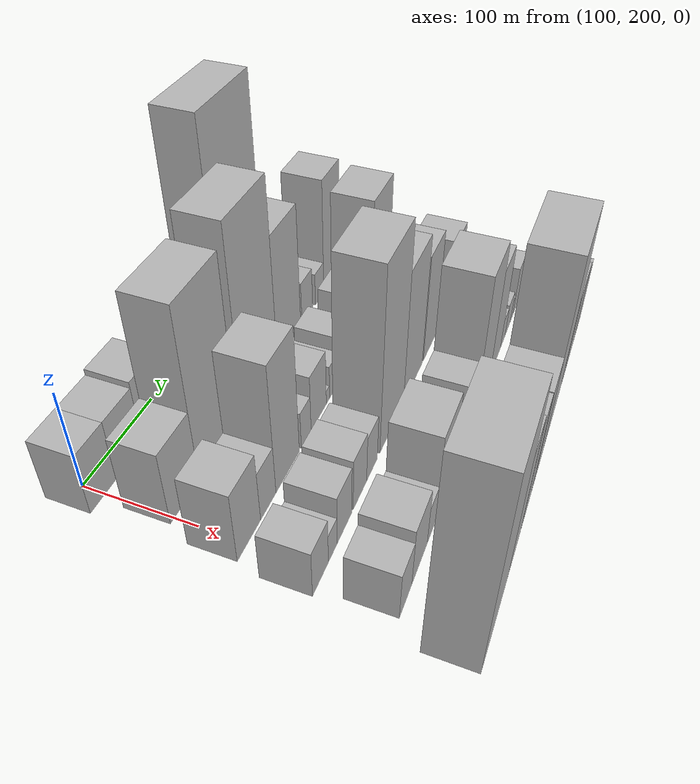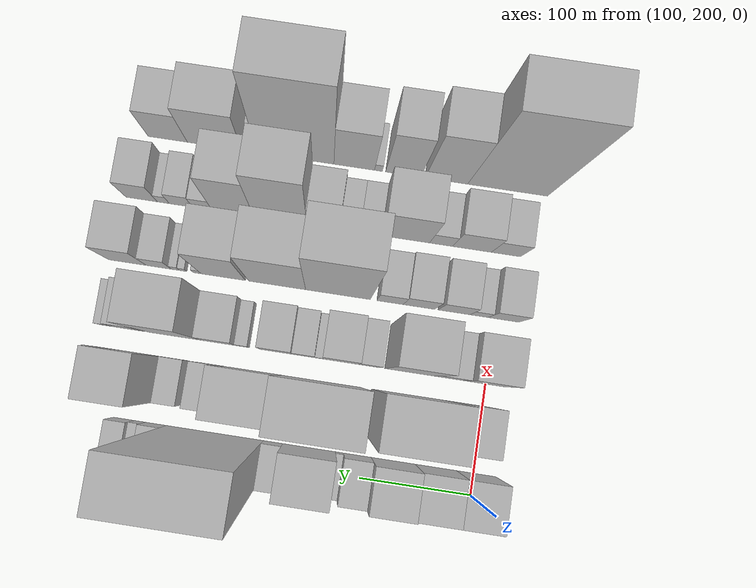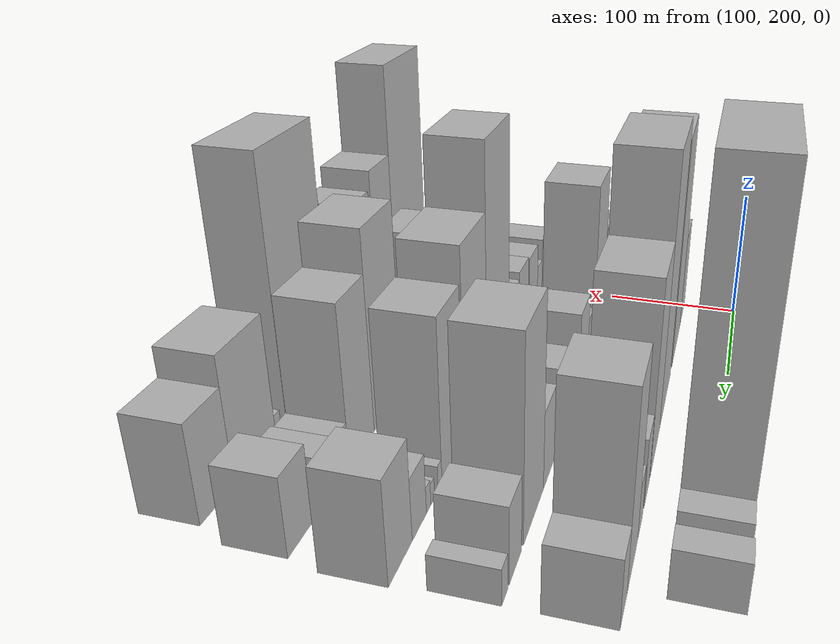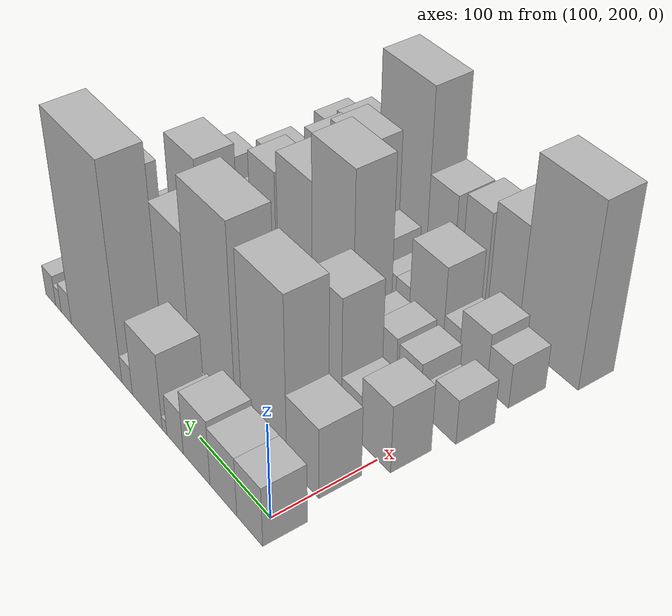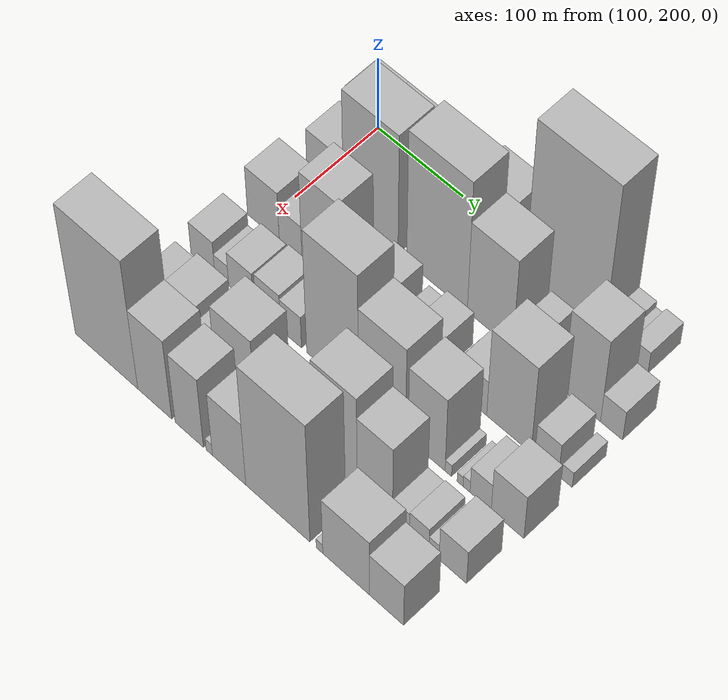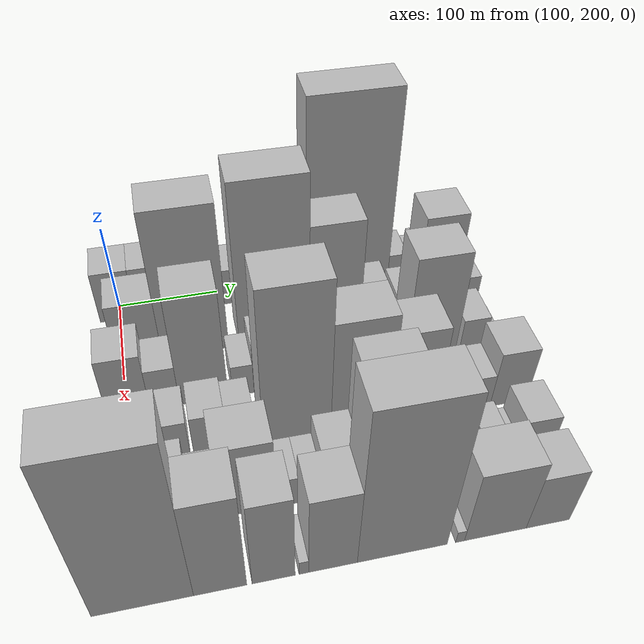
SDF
<sdf version="1.6">
 <world name="default">
  <model name="building_37">
   <static>1</static>
   <pose>100.0000 198.1465 0 0.000000 0.000000 0.000000</pose>
   <link name="link">
    <pose>0 0 31.50 0 0 0</pose>
    <collision name="collision"><geometry><box><size>40.0000 35.1027 63.0000</size></box></geometry></collision>
    <visual name="visual">
     <cast_shadows>0</cast_shadows>
     <geometry><box><size>40.0000 35.1027 63.0000</size></box></geometry>
     <material>
      <script>
       <uri>model://HANNAS_wall/materials/scripts</uri>
       <uri>model://HANNAS_wall/materials/textures</uri>
       <name>vrc/HANNAS_wall</name>
      </script>
     </material>
    </visual>
   </link>
  </model>
  <model name="building_38">
   <static>1</static>
   <pose>100.0000 234.5005 0 0.000000 0.000000 0.000000</pose>
   <link name="link">
    <pose>0 0 31.50 0 0 0</pose>
    <collision name="collision"><geometry><box><size>40.0000 37.6052 63.0000</size></box></geometry></collision>
    <visual name="visual">
     <cast_shadows>0</cast_shadows>
     <geometry><box><size>40.0000 37.6052 63.0000</size></box></geometry>
     <material>
      <script>
       <uri>model://HANNAS_wall/materials/scripts</uri>
       <uri>model://HANNAS_wall/materials/textures</uri>
       <name>vrc/HANNAS_wall</name>
      </script>
     </material>
    </visual>
   </link>
  </model>
  <model name="building_39">
   <static>1</static>
   <pose>100.0000 272.9587 0 0.000000 0.000000 0.000000</pose>
   <link name="link">
    <pose>0 0 34.50 0 0 0</pose>
    <collision name="collision"><geometry><box><size>40.0000 39.3113 69.0000</size></box></geometry></collision>
    <visual name="visual">
     <cast_shadows>0</cast_shadows>
     <geometry><box><size>40.0000 39.3113 69.0000</size></box></geometry>
     <material>
      <script>
       <uri>model://HANNAS_wall/materials/scripts</uri>
       <uri>model://HANNAS_wall/materials/textures</uri>
       <name>vrc/HANNAS_wall</name>
      </script>
     </material>
    </visual>
   </link>
  </model>
  <model name="building_40">
   <static>1</static>
   <pose>100.0000 305.1533 0 0.000000 0.000000 0.000000</pose>
   <link name="link">
    <pose>0 0 22.50 0 0 0</pose>
    <collision name="collision"><geometry><box><size>40.0000 25.0781 45.0000</size></box></geometry></collision>
    <visual name="visual">
     <cast_shadows>0</cast_shadows>
     <geometry><box><size>40.0000 25.0781 45.0000</size></box></geometry>
     <material>
      <script>
       <uri>model://HANNAS_wall/materials/scripts</uri>
       <uri>model://HANNAS_wall/materials/textures</uri>
       <name>vrc/HANNAS_wall</name>
      </script>
     </material>
    </visual>
   </link>
  </model>
  <model name="building_41">
   <static>1</static>
   <pose>100.0000 321.2895 0 0.000000 0.000000 0.000000</pose>
   <link name="link">
    <pose>0 0 7.50 0 0 0</pose>
    <collision name="collision"><geometry><box><size>40.0000 7.1942 15.0000</size></box></geometry></collision>
    <visual name="visual">
     <cast_shadows>0</cast_shadows>
     <geometry><box><size>40.0000 7.1942 15.0000</size></box></geometry>
     <material>
      <script>
       <uri>model://HANNAS_wall/materials/scripts</uri>
       <uri>model://HANNAS_wall/materials/textures</uri>
       <name>vrc/HANNAS_wall</name>
      </script>
     </material>
    </visual>
   </link>
  </model>
  <model name="building_42">
   <static>1</static>
   <pose>100.0000 348.6577 0 0.000000 0.000000 0.000000</pose>
   <link name="link">
    <pose>0 0 40.50 0 0 0</pose>
    <collision name="collision"><geometry><box><size>40.0000 47.5422 81.0000</size></box></geometry></collision>
    <visual name="visual">
     <cast_shadows>0</cast_shadows>
     <geometry><box><size>40.0000 47.5422 81.0000</size></box></geometry>
     <material>
      <script>
       <uri>model://HANNAS_wall/materials/scripts</uri>
       <uri>model://HANNAS_wall/materials/textures</uri>
       <name>vrc/HANNAS_wall</name>
      </script>
     </material>
    </visual>
   </link>
  </model>
  <model name="building_43">
   <static>1</static>
   <pose>100.0000 381.1885 0 0.000000 0.000000 0.000000</pose>
   <link name="link">
    <pose>0 0 15.00 0 0 0</pose>
    <collision name="collision"><geometry><box><size>40.0000 17.5194 30.0000</size></box></geometry></collision>
    <visual name="visual">
     <cast_shadows>0</cast_shadows>
     <geometry><box><size>40.0000 17.5194 30.0000</size></box></geometry>
     <material>
      <script>
       <uri>model://HANNAS_wall/materials/scripts</uri>
       <uri>model://HANNAS_wall/materials/textures</uri>
       <name>vrc/HANNAS_wall</name>
      </script>
     </material>
    </visual>
   </link>
  </model>
  <model name="building_44">
   <static>1</static>
   <pose>100.0000 433.9700 0 0.000000 0.000000 0.000000</pose>
   <link name="link">
    <pose>0 0 112.50 0 0 0</pose>
    <collision name="collision"><geometry><box><size>40.0000 88.0436 225.0000</size></box></geometry></collision>
    <visual name="visual">
     <cast_shadows>0</cast_shadows>
     <geometry><box><size>40.0000 88.0436 225.0000</size></box></geometry>
     <material>
      <script>
       <uri>model://HANNAS_wall/materials/scripts</uri>
       <uri>model://HANNAS_wall/materials/textures</uri>
       <name>vrc/HANNAS_wall</name>
      </script>
     </material>
    </visual>
   </link>
  </model>
  <model name="building_45">
   <static>1</static>
   <pose>100.0000 487.5893 0 0.000000 0.000000 0.000000</pose>
   <link name="link">
    <pose>0 0 16.50 0 0 0</pose>
    <collision name="collision"><geometry><box><size>40.0000 19.1948 33.0000</size></box></geometry></collision>
    <visual name="visual">
     <cast_shadows>0</cast_shadows>
     <geometry><box><size>40.0000 19.1948 33.0000</size></box></geometry>
     <material>
      <script>
       <uri>model://HANNAS_wall/materials/scripts</uri>
       <uri>model://HANNAS_wall/materials/textures</uri>
       <name>vrc/HANNAS_wall</name>
      </script>
     </material>
    </visual>
   </link>
  </model>
  <model name="building_46">
   <static>1</static>
   <pose>100.0000 502.1952 0 0.000000 0.000000 0.000000</pose>
   <link name="link">
    <pose>0 0 12.00 0 0 0</pose>
    <collision name="collision"><geometry><box><size>40.0000 10.0170 24.0000</size></box></geometry></collision>
    <visual name="visual">
     <cast_shadows>0</cast_shadows>
     <geometry><box><size>40.0000 10.0170 24.0000</size></box></geometry>
     <material>
      <script>
       <uri>model://HANNAS_wall/materials/scripts</uri>
       <uri>model://HANNAS_wall/materials/textures</uri>
       <name>vrc/HANNAS_wall</name>
      </script>
     </material>
    </visual>
   </link>
  </model>
  <model name="building_47">
   <static>1</static>
   <pose>100.0000 516.7106 0 0.000000 0.000000 0.000000</pose>
   <link name="link">
    <pose>0 0 16.50 0 0 0</pose>
    <collision name="collision"><geometry><box><size>40.0000 19.0138 33.0000</size></box></geometry></collision>
    <visual name="visual">
     <cast_shadows>0</cast_shadows>
     <geometry><box><size>40.0000 19.0138 33.0000</size></box></geometry>
     <material>
      <script>
       <uri>model://HANNAS_wall/materials/scripts</uri>
       <uri>model://HANNAS_wall/materials/textures</uri>
       <name>vrc/HANNAS_wall</name>
      </script>
     </material>
    </visual>
   </link>
  </model>
  <model name="building_95">
   <static>1</static>
   <pose>160.0000 215.7092 0 0.000000 0.000000 0.000000</pose>
   <link name="link">
    <pose>0 0 37.50 0 0 0</pose>
    <collision name="collision"><geometry><box><size>40.0000 43.2649 75.0000</size></box></geometry></collision>
    <visual name="visual">
     <cast_shadows>0</cast_shadows>
     <geometry><box><size>40.0000 43.2649 75.0000</size></box></geometry>
     <material>
      <script>
       <uri>model://HANNAS_wall/materials/scripts</uri>
       <uri>model://HANNAS_wall/materials/textures</uri>
       <name>vrc/HANNAS_wall</name>
      </script>
     </material>
    </visual>
   </link>
  </model>
  <model name="building_96">
   <static>1</static>
   <pose>160.0000 269.2768 0 0.000000 0.000000 0.000000</pose>
   <link name="link">
    <pose>0 0 87.00 0 0 0</pose>
    <collision name="collision"><geometry><box><size>40.0000 63.8704 174.0000</size></box></geometry></collision>
    <visual name="visual">
     <cast_shadows>0</cast_shadows>
     <geometry><box><size>40.0000 63.8704 174.0000</size></box></geometry>
     <material>
      <script>
       <uri>model://HANNAS_wall/materials/scripts</uri>
       <uri>model://HANNAS_wall/materials/textures</uri>
       <name>vrc/HANNAS_wall</name>
      </script>
     </material>
    </visual>
   </link>
  </model>
  <model name="building_97">
   <static>1</static>
   <pose>160.0000 346.0161 0 0.000000 0.000000 0.000000</pose>
   <link name="link">
    <pose>0 0 96.00 0 0 0</pose>
    <collision name="collision"><geometry><box><size>40.0000 69.6083 192.0000</size></box></geometry></collision>
    <visual name="visual">
     <cast_shadows>0</cast_shadows>
     <geometry><box><size>40.0000 69.6083 192.0000</size></box></geometry>
     <material>
      <script>
       <uri>model://HANNAS_wall/materials/scripts</uri>
       <uri>model://HANNAS_wall/materials/textures</uri>
       <name>vrc/HANNAS_wall</name>
      </script>
     </material>
    </visual>
   </link>
  </model>
  <model name="building_98">
   <static>1</static>
   <pose>160.0000 406.4764 0 0.000000 0.000000 0.000000</pose>
   <link name="link">
    <pose>0 0 67.50 0 0 0</pose>
    <collision name="collision"><geometry><box><size>40.0000 51.3122 135.0000</size></box></geometry></collision>
    <visual name="visual">
     <cast_shadows>0</cast_shadows>
     <geometry><box><size>40.0000 51.3122 135.0000</size></box></geometry>
     <material>
      <script>
       <uri>model://HANNAS_wall/materials/scripts</uri>
       <uri>model://HANNAS_wall/materials/textures</uri>
       <name>vrc/HANNAS_wall</name>
      </script>
     </material>
    </visual>
   </link>
  </model>
  <model name="building_99">
   <static>1</static>
   <pose>160.0000 447.7390 0 0.000000 0.000000 0.000000</pose>
   <link name="link">
    <pose>0 0 24.00 0 0 0</pose>
    <collision name="collision"><geometry><box><size>40.0000 25.2130 48.0000</size></box></geometry></collision>
    <visual name="visual">
     <cast_shadows>0</cast_shadows>
     <geometry><box><size>40.0000 25.2130 48.0000</size></box></geometry>
     <material>
      <script>
       <uri>model://HANNAS_wall/materials/scripts</uri>
       <uri>model://HANNAS_wall/materials/textures</uri>
       <name>vrc/HANNAS_wall</name>
      </script>
     </material>
    </visual>
   </link>
  </model>
  <model name="building_100">
   <static>1</static>
   <pose>160.0000 477.7067 0 0.000000 0.000000 0.000000</pose>
   <link name="link">
    <pose>0 0 18.00 0 0 0</pose>
    <collision name="collision"><geometry><box><size>40.0000 20.7225 36.0000</size></box></geometry></collision>
    <visual name="visual">
     <cast_shadows>0</cast_shadows>
     <geometry><box><size>40.0000 20.7225 36.0000</size></box></geometry>
     <material>
      <script>
       <uri>model://HANNAS_wall/materials/scripts</uri>
       <uri>model://HANNAS_wall/materials/textures</uri>
       <name>vrc/HANNAS_wall</name>
      </script>
     </material>
    </visual>
   </link>
  </model>
  <model name="building_101">
   <static>1</static>
   <pose>160.0000 508.3808 0 0.000000 0.000000 0.000000</pose>
   <link name="link">
    <pose>0 0 63.00 0 0 0</pose>
    <collision name="collision"><geometry><box><size>40.0000 40.6258 126.0000</size></box></geometry></collision>
    <visual name="visual">
     <cast_shadows>0</cast_shadows>
     <geometry><box><size>40.0000 40.6258 126.0000</size></box></geometry>
     <material>
      <script>
       <uri>model://HANNAS_wall/materials/scripts</uri>
       <uri>model://HANNAS_wall/materials/textures</uri>
       <name>vrc/HANNAS_wall</name>
      </script>
     </material>
    </visual>
   </link>
  </model>
  <model name="building_102">
   <static>1</static>
   <pose>160.0000 540.6862 0 0.000000 0.000000 0.000000</pose>
   <link name="link">
    <pose>0 0 22.50 0 0 0</pose>
    <collision name="collision"><geometry><box><size>40.0000 23.9850 45.0000</size></box></geometry></collision>
    <visual name="visual">
     <cast_shadows>0</cast_shadows>
     <geometry><box><size>40.0000 23.9850 45.0000</size></box></geometry>
     <material>
      <script>
       <uri>model://HANNAS_wall/materials/scripts</uri>
       <uri>model://HANNAS_wall/materials/textures</uri>
       <name>vrc/HANNAS_wall</name>
      </script>
     </material>
    </visual>
   </link>
  </model>
  <model name="building_142">
   <static>1</static>
   <pose>220.0000 202.3678 0 0.000000 0.000000 0.000000</pose>
   <link name="link">
    <pose>0 0 36.00 0 0 0</pose>
    <collision name="collision"><geometry><box><size>40.0000 37.9891 72.0000</size></box></geometry></collision>
    <visual name="visual">
     <cast_shadows>0</cast_shadows>
     <geometry><box><size>40.0000 37.9891 72.0000</size></box></geometry>
     <material>
      <script>
       <uri>model://HANNAS_wall/materials/scripts</uri>
       <uri>model://HANNAS_wall/materials/textures</uri>
       <name>vrc/HANNAS_wall</name>
      </script>
     </material>
    </visual>
   </link>
  </model>
  <model name="building_143">
   <static>1</static>
   <pose>220.0000 234.7328 0 0.000000 0.000000 0.000000</pose>
   <link name="link">
    <pose>0 0 25.50 0 0 0</pose>
    <collision name="collision"><geometry><box><size>40.0000 26.7411 51.0000</size></box></geometry></collision>
    <visual name="visual">
     <cast_shadows>0</cast_shadows>
     <geometry><box><size>40.0000 26.7411 51.0000</size></box></geometry>
     <material>
      <script>
       <uri>model://HANNAS_wall/materials/scripts</uri>
       <uri>model://HANNAS_wall/materials/textures</uri>
       <name>vrc/HANNAS_wall</name>
      </script>
     </material>
    </visual>
   </link>
  </model>
  <model name="building_144">
   <static>1</static>
   <pose>220.0000 270.1051 0 0.000000 0.000000 0.000000</pose>
   <link name="link">
    <pose>0 0 66.00 0 0 0</pose>
    <collision name="collision"><geometry><box><size>40.0000 44.0035 132.0000</size></box></geometry></collision>
    <visual name="visual">
     <cast_shadows>0</cast_shadows>
     <geometry><box><size>40.0000 44.0035 132.0000</size></box></geometry>
     <material>
      <script>
       <uri>model://HANNAS_wall/materials/scripts</uri>
       <uri>model://HANNAS_wall/materials/textures</uri>
       <name>vrc/HANNAS_wall</name>
      </script>
     </material>
    </visual>
   </link>
  </model>
  <model name="building_145">
   <static>1</static>
   <pose>220.0000 305.9944 0 0.000000 0.000000 0.000000</pose>
   <link name="link">
    <pose>0 0 19.50 0 0 0</pose>
    <collision name="collision"><geometry><box><size>40.0000 19.7751 39.0000</size></box></geometry></collision>
    <visual name="visual">
     <cast_shadows>0</cast_shadows>
     <geometry><box><size>40.0000 19.7751 39.0000</size></box></geometry>
     <material>
      <script>
       <uri>model://HANNAS_wall/materials/scripts</uri>
       <uri>model://HANNAS_wall/materials/textures</uri>
       <name>vrc/HANNAS_wall</name>
      </script>
     </material>
    </visual>
   </link>
  </model>
  <model name="building_146">
   <static>1</static>
   <pose>220.0000 332.1750 0 0.000000 0.000000 0.000000</pose>
   <link name="link">
    <pose>0 0 30.00 0 0 0</pose>
    <collision name="collision"><geometry><box><size>40.0000 32.5861 60.0000</size></box></geometry></collision>
    <visual name="visual">
     <cast_shadows>0</cast_shadows>
     <geometry><box><size>40.0000 32.5861 60.0000</size></box></geometry>
     <material>
      <script>
       <uri>model://HANNAS_wall/materials/scripts</uri>
       <uri>model://HANNAS_wall/materials/textures</uri>
       <name>vrc/HANNAS_wall</name>
      </script>
     </material>
    </visual>
   </link>
  </model>
  <model name="building_147">
   <static>1</static>
   <pose>220.0000 352.1014 0 0.000000 0.000000 0.000000</pose>
   <link name="link">
    <pose>0 0 7.50 0 0 0</pose>
    <collision name="collision"><geometry><box><size>40.0000 7.2666 15.0000</size></box></geometry></collision>
    <visual name="visual">
     <cast_shadows>0</cast_shadows>
     <geometry><box><size>40.0000 7.2666 15.0000</size></box></geometry>
     <material>
      <script>
       <uri>model://HANNAS_wall/materials/scripts</uri>
       <uri>model://HANNAS_wall/materials/textures</uri>
       <name>vrc/HANNAS_wall</name>
      </script>
     </material>
    </visual>
   </link>
  </model>
  <model name="building_148">
   <static>1</static>
   <pose>220.0000 365.8692 0 0.000000 0.000000 0.000000</pose>
   <link name="link">
    <pose>0 0 18.00 0 0 0</pose>
    <collision name="collision"><geometry><box><size>40.0000 20.2691 36.0000</size></box></geometry></collision>
    <visual name="visual">
     <cast_shadows>0</cast_shadows>
     <geometry><box><size>40.0000 20.2691 36.0000</size></box></geometry>
     <material>
      <script>
       <uri>model://HANNAS_wall/materials/scripts</uri>
       <uri>model://HANNAS_wall/materials/textures</uri>
       <name>vrc/HANNAS_wall</name>
      </script>
     </material>
    </visual>
   </link>
  </model>
  <model name="building_149">
   <static>1</static>
   <pose>220.0000 390.8870 0 0.000000 0.000000 0.000000</pose>
   <link name="link">
    <pose>0 0 25.50 0 0 0</pose>
    <collision name="collision"><geometry><box><size>40.0000 29.7665 51.0000</size></box></geometry></collision>
    <visual name="visual">
     <cast_shadows>0</cast_shadows>
     <geometry><box><size>40.0000 29.7665 51.0000</size></box></geometry>
     <material>
      <script>
       <uri>model://HANNAS_wall/materials/scripts</uri>
       <uri>model://HANNAS_wall/materials/textures</uri>
       <name>vrc/HANNAS_wall</name>
      </script>
     </material>
    </visual>
   </link>
  </model>
  <model name="building_150">
   <static>1</static>
   <pose>220.0000 421.6315 0 0.000000 0.000000 0.000000</pose>
   <link name="link">
    <pose>0 0 12.00 0 0 0</pose>
    <collision name="collision"><geometry><box><size>40.0000 11.7225 24.0000</size></box></geometry></collision>
    <visual name="visual">
     <cast_shadows>0</cast_shadows>
     <geometry><box><size>40.0000 11.7225 24.0000</size></box></geometry>
     <material>
      <script>
       <uri>model://HANNAS_wall/materials/scripts</uri>
       <uri>model://HANNAS_wall/materials/textures</uri>
       <name>vrc/HANNAS_wall</name>
      </script>
     </material>
    </visual>
   </link>
  </model>
  <model name="building_151">
   <static>1</static>
   <pose>220.0000 443.4058 0 0.000000 0.000000 0.000000</pose>
   <link name="link">
    <pose>0 0 27.00 0 0 0</pose>
    <collision name="collision"><geometry><box><size>40.0000 31.8260 54.0000</size></box></geometry></collision>
    <visual name="visual">
     <cast_shadows>0</cast_shadows>
     <geometry><box><size>40.0000 31.8260 54.0000</size></box></geometry>
     <material>
      <script>
       <uri>model://HANNAS_wall/materials/scripts</uri>
       <uri>model://HANNAS_wall/materials/textures</uri>
       <name>vrc/HANNAS_wall</name>
      </script>
     </material>
    </visual>
   </link>
  </model>
  <model name="building_152">
   <static>1</static>
   <pose>220.0000 483.7421 0 0.000000 0.000000 0.000000</pose>
   <link name="link">
    <pose>0 0 67.50 0 0 0</pose>
    <collision name="collision"><geometry><box><size>40.0000 48.8465 135.0000</size></box></geometry></collision>
    <visual name="visual">
     <cast_shadows>0</cast_shadows>
     <geometry><box><size>40.0000 48.8465 135.0000</size></box></geometry>
     <material>
      <script>
       <uri>model://HANNAS_wall/materials/scripts</uri>
       <uri>model://HANNAS_wall/materials/textures</uri>
       <name>vrc/HANNAS_wall</name>
      </script>
     </material>
    </visual>
   </link>
  </model>
  <model name="building_153">
   <static>1</static>
   <pose>220.0000 525.1260 0 0.000000 0.000000 0.000000</pose>
   <link name="link">
    <pose>0 0 25.50 0 0 0</pose>
    <collision name="collision"><geometry><box><size>40.0000 25.9213 51.0000</size></box></geometry></collision>
    <visual name="visual">
     <cast_shadows>0</cast_shadows>
     <geometry><box><size>40.0000 25.9213 51.0000</size></box></geometry>
     <material>
      <script>
       <uri>model://HANNAS_wall/materials/scripts</uri>
       <uri>model://HANNAS_wall/materials/textures</uri>
       <name>vrc/HANNAS_wall</name>
      </script>
     </material>
    </visual>
   </link>
  </model>
  <model name="building_154">
   <static>1</static>
   <pose>220.0000 546.9641 0 0.000000 0.000000 0.000000</pose>
   <link name="link">
    <pose>0 0 12.00 0 0 0</pose>
    <collision name="collision"><geometry><box><size>40.0000 11.7550 24.0000</size></box></geometry></collision>
    <visual name="visual">
     <cast_shadows>0</cast_shadows>
     <geometry><box><size>40.0000 11.7550 24.0000</size></box></geometry>
     <material>
      <script>
       <uri>model://HANNAS_wall/materials/scripts</uri>
       <uri>model://HANNAS_wall/materials/textures</uri>
       <name>vrc/HANNAS_wall</name>
      </script>
     </material>
    </visual>
   </link>
  </model>
  <model name="building_202">
   <static>1</static>
   <pose>280.0000 191.7204 0 0.000000 0.000000 0.000000</pose>
   <link name="link">
    <pose>0 0 24.00 0 0 0</pose>
    <collision name="collision"><geometry><box><size>40.0000 28.5439 48.0000</size></box></geometry></collision>
    <visual name="visual">
     <cast_shadows>0</cast_shadows>
     <geometry><box><size>40.0000 28.5439 48.0000</size></box></geometry>
     <material>
      <script>
       <uri>model://HANNAS_wall/materials/scripts</uri>
       <uri>model://HANNAS_wall/materials/textures</uri>
       <name>vrc/HANNAS_wall</name>
      </script>
     </material>
    </visual>
   </link>
  </model>
  <model name="building_203">
   <static>1</static>
   <pose>280.0000 214.2764 0 0.000000 0.000000 0.000000</pose>
   <link name="link">
    <pose>0 0 15.00 0 0 0</pose>
    <collision name="collision"><geometry><box><size>40.0000 16.5682 30.0000</size></box></geometry></collision>
    <visual name="visual">
     <cast_shadows>0</cast_shadows>
     <geometry><box><size>40.0000 16.5682 30.0000</size></box></geometry>
     <material>
      <script>
       <uri>model://HANNAS_wall/materials/scripts</uri>
       <uri>model://HANNAS_wall/materials/textures</uri>
       <name>vrc/HANNAS_wall</name>
      </script>
     </material>
    </visual>
   </link>
  </model>
  <model name="building_204">
   <static>1</static>
   <pose>280.0000 237.1541 0 0.000000 0.000000 0.000000</pose>
   <link name="link">
    <pose>0 0 25.50 0 0 0</pose>
    <collision name="collision"><geometry><box><size>40.0000 29.1873 51.0000</size></box></geometry></collision>
    <visual name="visual">
     <cast_shadows>0</cast_shadows>
     <geometry><box><size>40.0000 29.1873 51.0000</size></box></geometry>
     <material>
      <script>
       <uri>model://HANNAS_wall/materials/scripts</uri>
       <uri>model://HANNAS_wall/materials/textures</uri>
       <name>vrc/HANNAS_wall</name>
      </script>
     </material>
    </visual>
   </link>
  </model>
  <model name="building_205">
   <static>1</static>
   <pose>280.0000 269.2154 0 0.000000 0.000000 0.000000</pose>
   <link name="link">
    <pose>0 0 27.00 0 0 0</pose>
    <collision name="collision"><geometry><box><size>40.0000 28.9353 54.0000</size></box></geometry></collision>
    <visual name="visual">
     <cast_shadows>0</cast_shadows>
     <geometry><box><size>40.0000 28.9353 54.0000</size></box></geometry>
     <material>
      <script>
       <uri>model://HANNAS_wall/materials/scripts</uri>
       <uri>model://HANNAS_wall/materials/textures</uri>
       <name>vrc/HANNAS_wall</name>
      </script>
     </material>
    </visual>
   </link>
  </model>
  <model name="building_206">
   <static>1</static>
   <pose>280.0000 295.8527 0 0.000000 0.000000 0.000000</pose>
   <link name="link">
    <pose>0 0 24.00 0 0 0</pose>
    <collision name="collision"><geometry><box><size>40.0000 24.3392 48.0000</size></box></geometry></collision>
    <visual name="visual">
     <cast_shadows>0</cast_shadows>
     <geometry><box><size>40.0000 24.3392 48.0000</size></box></geometry>
     <material>
      <script>
       <uri>model://HANNAS_wall/materials/scripts</uri>
       <uri>model://HANNAS_wall/materials/textures</uri>
       <name>vrc/HANNAS_wall</name>
      </script>
     </material>
    </visual>
   </link>
  </model>
  <model name="building_207">
   <static>1</static>
   <pose>280.0000 343.8067 0 0.000000 0.000000 0.000000</pose>
   <link name="link">
    <pose>0 0 93.00 0 0 0</pose>
    <collision name="collision"><geometry><box><size>40.0000 59.5689 186.0000</size></box></geometry></collision>
    <visual name="visual">
     <cast_shadows>0</cast_shadows>
     <geometry><box><size>40.0000 59.5689 186.0000</size></box></geometry>
     <material>
      <script>
       <uri>model://HANNAS_wall/materials/scripts</uri>
       <uri>model://HANNAS_wall/materials/textures</uri>
       <name>vrc/HANNAS_wall</name>
      </script>
     </material>
    </visual>
   </link>
  </model>
  <model name="building_208">
   <static>1</static>
   <pose>280.0000 399.9408 0 0.000000 0.000000 0.000000</pose>
   <link name="link">
    <pose>0 0 69.00 0 0 0</pose>
    <collision name="collision"><geometry><box><size>40.0000 52.6993 138.0000</size></box></geometry></collision>
    <visual name="visual">
     <cast_shadows>0</cast_shadows>
     <geometry><box><size>40.0000 52.6993 138.0000</size></box></geometry>
     <material>
      <script>
       <uri>model://HANNAS_wall/materials/scripts</uri>
       <uri>model://HANNAS_wall/materials/textures</uri>
       <name>vrc/HANNAS_wall</name>
      </script>
     </material>
    </visual>
   </link>
  </model>
  <model name="building_209">
   <static>1</static>
   <pose>280.0000 449.7922 0 0.000000 0.000000 0.000000</pose>
   <link name="link">
    <pose>0 0 57.00 0 0 0</pose>
    <collision name="collision"><geometry><box><size>40.0000 41.0035 114.0000</size></box></geometry></collision>
    <visual name="visual">
     <cast_shadows>0</cast_shadows>
     <geometry><box><size>40.0000 41.0035 114.0000</size></box></geometry>
     <material>
      <script>
       <uri>model://HANNAS_wall/materials/scripts</uri>
       <uri>model://HANNAS_wall/materials/textures</uri>
       <name>vrc/HANNAS_wall</name>
      </script>
     </material>
    </visual>
   </link>
  </model>
  <model name="building_210">
   <static>1</static>
   <pose>280.0000 473.9134 0 0.000000 0.000000 0.000000</pose>
   <link name="link">
    <pose>0 0 9.00 0 0 0</pose>
    <collision name="collision"><geometry><box><size>40.0000 7.2389 18.0000</size></box></geometry></collision>
    <visual name="visual">
     <cast_shadows>0</cast_shadows>
     <geometry><box><size>40.0000 7.2389 18.0000</size></box></geometry>
     <material>
      <script>
       <uri>model://HANNAS_wall/materials/scripts</uri>
       <uri>model://HANNAS_wall/materials/textures</uri>
       <name>vrc/HANNAS_wall</name>
      </script>
     </material>
    </visual>
   </link>
  </model>
  <model name="building_211">
   <static>1</static>
   <pose>280.0000 486.8622 0 0.000000 0.000000 0.000000</pose>
   <link name="link">
    <pose>0 0 7.50 0 0 0</pose>
    <collision name="collision"><geometry><box><size>40.0000 6.6588 15.0000</size></box></geometry></collision>
    <visual name="visual">
     <cast_shadows>0</cast_shadows>
     <geometry><box><size>40.0000 6.6588 15.0000</size></box></geometry>
     <material>
      <script>
       <uri>model://HANNAS_wall/materials/scripts</uri>
       <uri>model://HANNAS_wall/materials/textures</uri>
       <name>vrc/HANNAS_wall</name>
      </script>
     </material>
    </visual>
   </link>
  </model>
  <model name="building_212">
   <static>1</static>
   <pose>280.0000 493.9786 0 0.000000 0.000000 0.000000</pose>
   <link name="link">
    <pose>0 0 9.00 0 0 0</pose>
    <collision name="collision"><geometry><box><size>40.0000 7.5740 18.0000</size></box></geometry></collision>
    <visual name="visual">
     <cast_shadows>0</cast_shadows>
     <geometry><box><size>40.0000 7.5740 18.0000</size></box></geometry>
     <material>
      <script>
       <uri>model://HANNAS_wall/materials/scripts</uri>
       <uri>model://HANNAS_wall/materials/textures</uri>
       <name>vrc/HANNAS_wall</name>
      </script>
     </material>
    </visual>
   </link>
  </model>
  <model name="building_213">
   <static>1</static>
   <pose>280.0000 509.3472 0 0.000000 0.000000 0.000000</pose>
   <link name="link">
    <pose>0 0 21.00 0 0 0</pose>
    <collision name="collision"><geometry><box><size>40.0000 23.1630 42.0000</size></box></geometry></collision>
    <visual name="visual">
     <cast_shadows>0</cast_shadows>
     <geometry><box><size>40.0000 23.1630 42.0000</size></box></geometry>
     <material>
      <script>
       <uri>model://HANNAS_wall/materials/scripts</uri>
       <uri>model://HANNAS_wall/materials/textures</uri>
       <name>vrc/HANNAS_wall</name>
      </script>
     </material>
    </visual>
   </link>
  </model>
  <model name="building_214">
   <static>1</static>
   <pose>280.0000 538.5665 0 0.000000 0.000000 0.000000</pose>
   <link name="link">
    <pose>0 0 34.50 0 0 0</pose>
    <collision name="collision"><geometry><box><size>40.0000 35.2756 69.0000</size></box></geometry></collision>
    <visual name="visual">
     <cast_shadows>0</cast_shadows>
     <geometry><box><size>40.0000 35.2756 69.0000</size></box></geometry>
     <material>
      <script>
       <uri>model://HANNAS_wall/materials/scripts</uri>
       <uri>model://HANNAS_wall/materials/textures</uri>
       <name>vrc/HANNAS_wall</name>
      </script>
     </material>
    </visual>
   </link>
  </model>
  <model name="building_261">
   <static>1</static>
   <pose>340.0000 196.9856 0 0.000000 0.000000 0.000000</pose>
   <link name="link">
    <pose>0 0 24.00 0 0 0</pose>
    <collision name="collision"><geometry><box><size>40.0000 26.9393 48.0000</size></box></geometry></collision>
    <visual name="visual">
     <cast_shadows>0</cast_shadows>
     <geometry><box><size>40.0000 26.9393 48.0000</size></box></geometry>
     <material>
      <script>
       <uri>model://HANNAS_wall/materials/scripts</uri>
       <uri>model://HANNAS_wall/materials/textures</uri>
       <name>vrc/HANNAS_wall</name>
      </script>
     </material>
    </visual>
   </link>
  </model>
  <model name="building_262">
   <static>1</static>
   <pose>340.0000 228.4249 0 0.000000 0.000000 0.000000</pose>
   <link name="link">
    <pose>0 0 30.00 0 0 0</pose>
    <collision name="collision"><geometry><box><size>40.0000 35.9394 60.0000</size></box></geometry></collision>
    <visual name="visual">
     <cast_shadows>0</cast_shadows>
     <geometry><box><size>40.0000 35.9394 60.0000</size></box></geometry>
     <material>
      <script>
       <uri>model://HANNAS_wall/materials/scripts</uri>
       <uri>model://HANNAS_wall/materials/textures</uri>
       <name>vrc/HANNAS_wall</name>
      </script>
     </material>
    </visual>
   </link>
  </model>
  <model name="building_263">
   <static>1</static>
   <pose>340.0000 257.0936 0 0.000000 0.000000 0.000000</pose>
   <link name="link">
    <pose>0 0 19.50 0 0 0</pose>
    <collision name="collision"><geometry><box><size>40.0000 21.3980 39.0000</size></box></geometry></collision>
    <visual name="visual">
     <cast_shadows>0</cast_shadows>
     <geometry><box><size>40.0000 21.3980 39.0000</size></box></geometry>
     <material>
      <script>
       <uri>model://HANNAS_wall/materials/scripts</uri>
       <uri>model://HANNAS_wall/materials/textures</uri>
       <name>vrc/HANNAS_wall</name>
      </script>
     </material>
    </visual>
   </link>
  </model>
  <model name="building_264">
   <static>1</static>
   <pose>340.0000 290.9084 0 0.000000 0.000000 0.000000</pose>
   <link name="link">
    <pose>0 0 45.00 0 0 0</pose>
    <collision name="collision"><geometry><box><size>40.0000 46.2317 90.0000</size></box></geometry></collision>
    <visual name="visual">
     <cast_shadows>0</cast_shadows>
     <geometry><box><size>40.0000 46.2317 90.0000</size></box></geometry>
     <material>
      <script>
       <uri>model://HANNAS_wall/materials/scripts</uri>
       <uri>model://HANNAS_wall/materials/textures</uri>
       <name>vrc/HANNAS_wall</name>
      </script>
     </material>
    </visual>
   </link>
  </model>
  <model name="building_265">
   <static>1</static>
   <pose>340.0000 323.5546 0 0.000000 0.000000 0.000000</pose>
   <link name="link">
    <pose>0 0 18.00 0 0 0</pose>
    <collision name="collision"><geometry><box><size>40.0000 19.0606 36.0000</size></box></geometry></collision>
    <visual name="visual">
     <cast_shadows>0</cast_shadows>
     <geometry><box><size>40.0000 19.0606 36.0000</size></box></geometry>
     <material>
      <script>
       <uri>model://HANNAS_wall/materials/scripts</uri>
       <uri>model://HANNAS_wall/materials/textures</uri>
       <name>vrc/HANNAS_wall</name>
      </script>
     </material>
    </visual>
   </link>
  </model>
  <model name="building_266">
   <static>1</static>
   <pose>340.0000 342.1946 0 0.000000 0.000000 0.000000</pose>
   <link name="link">
    <pose>0 0 18.00 0 0 0</pose>
    <collision name="collision"><geometry><box><size>40.0000 18.2194 36.0000</size></box></geometry></collision>
    <visual name="visual">
     <cast_shadows>0</cast_shadows>
     <geometry><box><size>40.0000 18.2194 36.0000</size></box></geometry>
     <material>
      <script>
       <uri>model://HANNAS_wall/materials/scripts</uri>
       <uri>model://HANNAS_wall/materials/textures</uri>
       <name>vrc/HANNAS_wall</name>
      </script>
     </material>
    </visual>
   </link>
  </model>
  <model name="building_267">
   <static>1</static>
   <pose>340.0000 366.5868 0 0.000000 0.000000 0.000000</pose>
   <link name="link">
    <pose>0 0 30.00 0 0 0</pose>
    <collision name="collision"><geometry><box><size>40.0000 30.5650 60.0000</size></box></geometry></collision>
    <visual name="visual">
     <cast_shadows>0</cast_shadows>
     <geometry><box><size>40.0000 30.5650 60.0000</size></box></geometry>
     <material>
      <script>
       <uri>model://HANNAS_wall/materials/scripts</uri>
       <uri>model://HANNAS_wall/materials/textures</uri>
       <name>vrc/HANNAS_wall</name>
      </script>
     </material>
    </visual>
   </link>
  </model>
  <model name="building_268">
   <static>1</static>
   <pose>340.0000 406.5755 0 0.000000 0.000000 0.000000</pose>
   <link name="link">
    <pose>0 0 72.00 0 0 0</pose>
    <collision name="collision"><geometry><box><size>40.0000 49.4124 144.0000</size></box></geometry></collision>
    <visual name="visual">
     <cast_shadows>0</cast_shadows>
     <geometry><box><size>40.0000 49.4124 144.0000</size></box></geometry>
     <material>
      <script>
       <uri>model://HANNAS_wall/materials/scripts</uri>
       <uri>model://HANNAS_wall/materials/textures</uri>
       <name>vrc/HANNAS_wall</name>
      </script>
     </material>
    </visual>
   </link>
  </model>
  <model name="building_269">
   <static>1</static>
   <pose>340.0000 450.8214 0 0.000000 0.000000 0.000000</pose>
   <link name="link">
    <pose>0 0 57.00 0 0 0</pose>
    <collision name="collision"><geometry><box><size>40.0000 39.0794 114.0000</size></box></geometry></collision>
    <visual name="visual">
     <cast_shadows>0</cast_shadows>
     <geometry><box><size>40.0000 39.0794 114.0000</size></box></geometry>
     <material>
      <script>
       <uri>model://HANNAS_wall/materials/scripts</uri>
       <uri>model://HANNAS_wall/materials/textures</uri>
       <name>vrc/HANNAS_wall</name>
      </script>
     </material>
    </visual>
   </link>
  </model>
  <model name="building_270">
   <static>1</static>
   <pose>340.0000 479.5709 0 0.000000 0.000000 0.000000</pose>
   <link name="link">
    <pose>0 0 16.50 0 0 0</pose>
    <collision name="collision"><geometry><box><size>40.0000 18.4196 33.0000</size></box></geometry></collision>
    <visual name="visual">
     <cast_shadows>0</cast_shadows>
     <geometry><box><size>40.0000 18.4196 33.0000</size></box></geometry>
     <material>
      <script>
       <uri>model://HANNAS_wall/materials/scripts</uri>
       <uri>model://HANNAS_wall/materials/textures</uri>
       <name>vrc/HANNAS_wall</name>
      </script>
     </material>
    </visual>
   </link>
  </model>
  <model name="building_271">
   <static>1</static>
   <pose>340.0000 499.5183 0 0.000000 0.000000 0.000000</pose>
   <link name="link">
    <pose>0 0 18.00 0 0 0</pose>
    <collision name="collision"><geometry><box><size>40.0000 21.4752 36.0000</size></box></geometry></collision>
    <visual name="visual">
     <cast_shadows>0</cast_shadows>
     <geometry><box><size>40.0000 21.4752 36.0000</size></box></geometry>
     <material>
      <script>
       <uri>model://HANNAS_wall/materials/scripts</uri>
       <uri>model://HANNAS_wall/materials/textures</uri>
       <name>vrc/HANNAS_wall</name>
      </script>
     </material>
    </visual>
   </link>
  </model>
  <model name="building_272">
   <static>1</static>
   <pose>340.0000 515.8162 0 0.000000 0.000000 0.000000</pose>
   <link name="link">
    <pose>0 0 12.00 0 0 0</pose>
    <collision name="collision"><geometry><box><size>40.0000 11.1206 24.0000</size></box></geometry></collision>
    <visual name="visual">
     <cast_shadows>0</cast_shadows>
     <geometry><box><size>40.0000 11.1206 24.0000</size></box></geometry>
     <material>
      <script>
       <uri>model://HANNAS_wall/materials/scripts</uri>
       <uri>model://HANNAS_wall/materials/textures</uri>
       <name>vrc/HANNAS_wall</name>
      </script>
     </material>
    </visual>
   </link>
  </model>
  <model name="building_273">
   <static>1</static>
   <pose>340.0000 536.2150 0 0.000000 0.000000 0.000000</pose>
   <link name="link">
    <pose>0 0 27.00 0 0 0</pose>
    <collision name="collision"><geometry><box><size>40.0000 29.6770 54.0000</size></box></geometry></collision>
    <visual name="visual">
     <cast_shadows>0</cast_shadows>
     <geometry><box><size>40.0000 29.6770 54.0000</size></box></geometry>
     <material>
      <script>
       <uri>model://HANNAS_wall/materials/scripts</uri>
       <uri>model://HANNAS_wall/materials/textures</uri>
       <name>vrc/HANNAS_wall</name>
      </script>
     </material>
    </visual>
   </link>
  </model>
  <model name="building_315">
   <static>1</static>
   <pose>400.0000 203.2287 0 0.000000 0.000000 0.000000</pose>
   <link name="link">
    <pose>0 0 97.50 0 0 0</pose>
    <collision name="collision"><geometry><box><size>40.0000 74.5839 195.0000</size></box></geometry></collision>
    <visual name="visual">
     <cast_shadows>0</cast_shadows>
     <geometry><box><size>40.0000 74.5839 195.0000</size></box></geometry>
     <material>
      <script>
       <uri>model://HANNAS_wall/materials/scripts</uri>
       <uri>model://HANNAS_wall/materials/textures</uri>
       <name>vrc/HANNAS_wall</name>
      </script>
     </material>
    </visual>
   </link>
  </model>
  <model name="building_316">
   <static>1</static>
   <pose>400.0000 260.4771 0 0.000000 0.000000 0.000000</pose>
   <link name="link">
    <pose>0 0 61.50 0 0 0</pose>
    <collision name="collision"><geometry><box><size>40.0000 39.9127 123.0000</size></box></geometry></collision>
    <visual name="visual">
     <cast_shadows>0</cast_shadows>
     <geometry><box><size>40.0000 39.9127 123.0000</size></box></geometry>
     <material>
      <script>
       <uri>model://HANNAS_wall/materials/scripts</uri>
       <uri>model://HANNAS_wall/materials/textures</uri>
       <name>vrc/HANNAS_wall</name>
      </script>
     </material>
    </visual>
   </link>
  </model>
  <model name="building_317">
   <static>1</static>
   <pose>400.0000 300.8813 0 0.000000 0.000000 0.000000</pose>
   <link name="link">
    <pose>0 0 54.00 0 0 0</pose>
    <collision name="collision"><geometry><box><size>40.0000 32.8959 108.0000</size></box></geometry></collision>
    <visual name="visual">
     <cast_shadows>0</cast_shadows>
     <geometry><box><size>40.0000 32.8959 108.0000</size></box></geometry>
     <material>
      <script>
       <uri>model://HANNAS_wall/materials/scripts</uri>
       <uri>model://HANNAS_wall/materials/textures</uri>
       <name>vrc/HANNAS_wall</name>
      </script>
     </material>
    </visual>
   </link>
  </model>
  <model name="building_318">
   <static>1</static>
   <pose>400.0000 324.0160 0 0.000000 0.000000 0.000000</pose>
   <link name="link">
    <pose>0 0 9.00 0 0 0</pose>
    <collision name="collision"><geometry><box><size>40.0000 7.3735 18.0000</size></box></geometry></collision>
    <visual name="visual">
     <cast_shadows>0</cast_shadows>
     <geometry><box><size>40.0000 7.3735 18.0000</size></box></geometry>
     <material>
      <script>
       <uri>model://HANNAS_wall/materials/scripts</uri>
       <uri>model://HANNAS_wall/materials/textures</uri>
       <name>vrc/HANNAS_wall</name>
      </script>
     </material>
    </visual>
   </link>
  </model>
  <model name="building_319">
   <static>1</static>
   <pose>400.0000 346.7630 0 0.000000 0.000000 0.000000</pose>
   <link name="link">
    <pose>0 0 49.50 0 0 0</pose>
    <collision name="collision"><geometry><box><size>40.0000 38.1206 99.0000</size></box></geometry></collision>
    <visual name="visual">
     <cast_shadows>0</cast_shadows>
     <geometry><box><size>40.0000 38.1206 99.0000</size></box></geometry>
     <material>
      <script>
       <uri>model://HANNAS_wall/materials/scripts</uri>
       <uri>model://HANNAS_wall/materials/textures</uri>
       <name>vrc/HANNAS_wall</name>
      </script>
     </material>
    </visual>
   </link>
  </model>
  <model name="building_320">
   <static>1</static>
   <pose>400.0000 401.9573 0 0.000000 0.000000 0.000000</pose>
   <link name="link">
    <pose>0 0 94.50 0 0 0</pose>
    <collision name="collision"><geometry><box><size>40.0000 72.2679 189.0000</size></box></geometry></collision>
    <visual name="visual">
     <cast_shadows>0</cast_shadows>
     <geometry><box><size>40.0000 72.2679 189.0000</size></box></geometry>
     <material>
      <script>
       <uri>model://HANNAS_wall/materials/scripts</uri>
       <uri>model://HANNAS_wall/materials/textures</uri>
       <name>vrc/HANNAS_wall</name>
      </script>
     </material>
    </visual>
   </link>
  </model>
  <model name="building_321">
   <static>1</static>
   <pose>400.0000 448.7453 0 0.000000 0.000000 0.000000</pose>
   <link name="link">
    <pose>0 0 7.50 0 0 0</pose>
    <collision name="collision"><geometry><box><size>40.0000 7.3082 15.0000</size></box></geometry></collision>
    <visual name="visual">
     <cast_shadows>0</cast_shadows>
     <geometry><box><size>40.0000 7.3082 15.0000</size></box></geometry>
     <material>
      <script>
       <uri>model://HANNAS_wall/materials/scripts</uri>
       <uri>model://HANNAS_wall/materials/textures</uri>
       <name>vrc/HANNAS_wall</name>
      </script>
     </material>
    </visual>
   </link>
  </model>
  <model name="building_322">
   <static>1</static>
   <pose>400.0000 478.1132 0 0.000000 0.000000 0.000000</pose>
   <link name="link">
    <pose>0 0 45.00 0 0 0</pose>
    <collision name="collision"><geometry><box><size>40.0000 51.4277 90.0000</size></box></geometry></collision>
    <visual name="visual">
     <cast_shadows>0</cast_shadows>
     <geometry><box><size>40.0000 51.4277 90.0000</size></box></geometry>
     <material>
      <script>
       <uri>model://HANNAS_wall/materials/scripts</uri>
       <uri>model://HANNAS_wall/materials/textures</uri>
       <name>vrc/HANNAS_wall</name>
      </script>
     </material>
    </visual>
   </link>
  </model>
  <model name="building_323">
   <static>1</static>
   <pose>400.0000 522.3293 0 0.000000 0.000000 0.000000</pose>
   <link name="link">
    <pose>0 0 34.50 0 0 0</pose>
    <collision name="collision"><geometry><box><size>40.0000 37.0044 69.0000</size></box></geometry></collision>
    <visual name="visual">
     <cast_shadows>0</cast_shadows>
     <geometry><box><size>40.0000 37.0044 69.0000</size></box></geometry>
     <material>
      <script>
       <uri>model://HANNAS_wall/materials/scripts</uri>
       <uri>model://HANNAS_wall/materials/textures</uri>
       <name>vrc/HANNAS_wall</name>
      </script>
     </material>
    </visual>
   </link>
  </model>
 </world>
</sdf>
